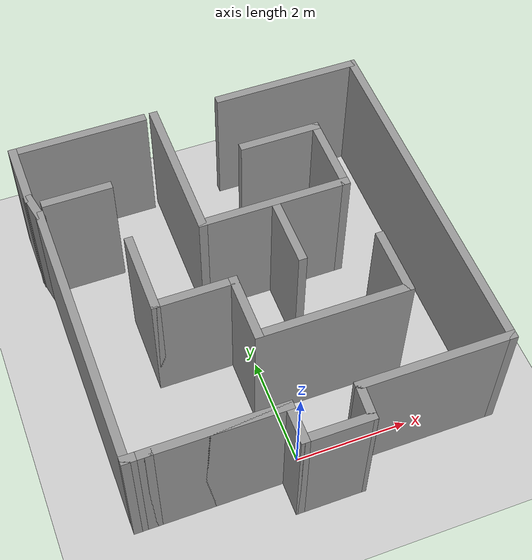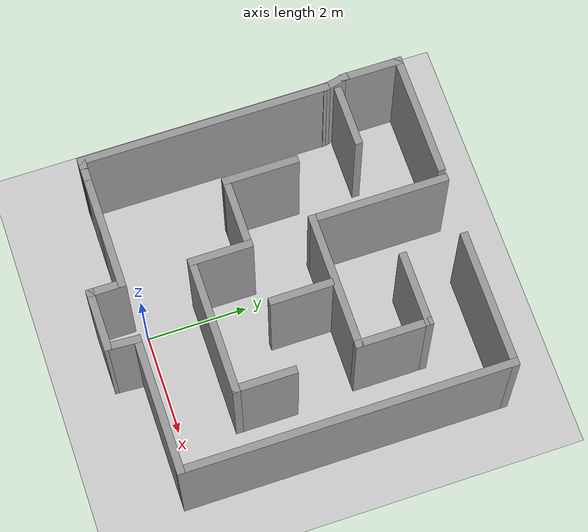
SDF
<sdf version="1.7">
 <world name="default">
  <light name="sun" type="directional">
   <diffuse>0.8 0.8 0.8 1</diffuse>
   <specular>0.2 0.2 0.2 1</specular>
   <attenuation>
    <range>1000</range>
    <constant>0.9</constant>
    <linear>0.01</linear>
    <quadratic>0.001</quadratic>
   </attenuation>
   <direction>-0.5 0.1 -0.9</direction>
   <spot><inner_angle>0</inner_angle><outer_angle>0</outer_angle><falloff>0</falloff></spot>
  </light>
  <model name="ground_plane">
   <static>1</static>
   <link name="link">
    <collision name="collision">
     <geometry><plane><normal>0 0 1</normal><size>100 100</size></plane></geometry>
     <surface><friction><ode><mu>100</mu><mu2>50</mu2></ode></friction></surface>
    </collision>
    <visual name="visual">
     <cast_shadows>0</cast_shadows>
     <geometry><plane><normal>0 0 1</normal><size>100 100</size></plane></geometry>
     <material>
      <script><uri>file://media/materials/scripts/gazebo.material</uri><name>Gazebo/Grey</name></script>
     </material>
    </visual>
   </link>
  </model>
  <gravity>0 0 -9.8</gravity>
  <magnetic_field>6e-06 2.3e-05 -4.2e-05</magnetic_field>
  <atmosphere type="adiabatic"/>
  <physics type="ode">
   <max_step_size>0.001</max_step_size>
   <real_time_factor>1</real_time_factor>
   <real_time_update_rate>1000</real_time_update_rate>
  </physics>
  <scene><ambient>0.4 0.4 0.4 1</ambient><background>0.7 0.7 0.7 1</background><shadows>1</shadows></scene>
  <audio><device>default</device></audio>
  <spherical_coordinates>
   <surface_model>EARTH_WGS84</surface_model>
   <latitude_deg>0</latitude_deg>
   <longitude_deg>0</longitude_deg>
   <elevation>0</elevation>
   <heading_deg>0</heading_deg>
  </spherical_coordinates>
  <model name="my_world">
   <pose>0.211546 2.62958 0 0 -0 0</pose>
   <link name="Wall_0">
    <collision name="Wall_0_Collision">
     <geometry><box><size>0.25 0.15 2.5</size></box></geometry>
     <pose>0 0 1.25 0 -0 0</pose>
    </collision>
    <visual name="Wall_0_Visual">
     <pose>0 0 1.25 0 -0 0</pose>
     <geometry><box><size>0.25 0.15 2.5</size></box></geometry>
     <material>
      <script><uri>file://media/materials/scripts/gazebo.material</uri><name>Gazebo/Grey</name></script>
      <ambient>1 1 1 1</ambient>
     </material>
     <meta><layer>0</layer></meta>
    </visual>
    <pose>-2.81812 -2.87818 0 0 -0 3.14159</pose>
   </link>
   <link name="Wall_1">
    <collision name="Wall_1_Collision">
     <geometry><box><size>2.5 0.15 2.5</size></box></geometry>
     <pose>0 0 1.25 0 -0 0</pose>
    </collision>
    <visual name="Wall_1_Visual">
     <pose>0 0 1.25 0 -0 0</pose>
     <geometry><box><size>2.5 0.15 2.5</size></box></geometry>
     <material>
      <script><uri>file://media/materials/scripts/gazebo.material</uri><name>Gazebo/Grey</name></script>
      <ambient>1 1 1 1</ambient>
     </material>
     <meta><layer>0</layer></meta>
    </visual>
    <pose>-1.69312 -2.87818 0 0 -0 0</pose>
   </link>
   <link name="Wall_10">
    <collision name="Wall_10_Collision">
     <geometry><box><size>2.75 0.15 2.5</size></box></geometry>
     <pose>0 0 1.25 0 -0 0</pose>
    </collision>
    <visual name="Wall_10_Visual">
     <pose>0 0 1.25 0 -0 0</pose>
     <geometry><box><size>2.75 0.15 2.5</size></box></geometry>
     <material>
      <script><uri>file://media/materials/scripts/gazebo.material</uri><name>Gazebo/Grey</name></script>
      <ambient>1 1 1 1</ambient>
     </material>
     <meta><layer>0</layer></meta>
    </visual>
    <pose>0.683531 0.867343 0 0 -0 0</pose>
   </link>
   <link name="Wall_11">
    <collision name="Wall_11_Collision">
     <geometry><box><size>1.5 0.15 2.5</size></box></geometry>
     <pose>0 0 1.25 0 -0 0</pose>
    </collision>
    <visual name="Wall_11_Visual">
     <pose>0 0 1.25 0 -0 0</pose>
     <geometry><box><size>1.5 0.15 2.5</size></box></geometry>
     <material>
      <script><uri>file://media/materials/scripts/gazebo.material</uri><name>Gazebo/Grey</name></script>
      <ambient>1 1 1 1</ambient>
     </material>
     <meta><layer>0</layer></meta>
    </visual>
    <pose>1.98353 1.54234 0 0 -0 1.5708</pose>
   </link>
   <link name="Wall_12">
    <collision name="Wall_12_Collision">
     <geometry><box><size>1.5 0.15 2.5</size></box></geometry>
     <pose>0 0 1.25 0 -0 0</pose>
    </collision>
    <visual name="Wall_12_Visual">
     <pose>0 0 1.25 0 -0 0</pose>
     <geometry><box><size>1.5 0.15 2.5</size></box></geometry>
     <material>
      <script><uri>file://media/materials/scripts/gazebo.material</uri><name>Gazebo/Grey</name></script>
      <ambient>1 1 1 1</ambient>
     </material>
     <meta><layer>0</layer></meta>
    </visual>
    <pose>1.30853 2.21734 0 0 -0 3.14159</pose>
   </link>
   <link name="Wall_14">
    <collision name="Wall_14_Collision">
     <geometry><box><size>1.25 0.15 2.5</size></box></geometry>
     <pose>0 0 1.25 0 -0 0</pose>
    </collision>
    <visual name="Wall_14_Visual">
     <pose>0 0 1.25 0 -0 0</pose>
     <geometry><box><size>1.25 0.15 2.5</size></box></geometry>
     <material>
      <script><uri>file://media/materials/scripts/gazebo.material</uri><name>Gazebo/Grey</name></script>
      <ambient>1 1 1 1</ambient>
     </material>
     <meta><layer>0</layer></meta>
    </visual>
    <pose>0.691484 0.199947 0 0 -0 1.5708</pose>
   </link>
   <link name="Wall_16">
    <collision name="Wall_16_Collision">
     <geometry><box><size>2.75 0.15 2.5</size></box></geometry>
     <pose>0 0 1.25 0 -0 0</pose>
    </collision>
    <visual name="Wall_16_Visual">
     <pose>0 0 1.25 0 -0 0</pose>
     <geometry><box><size>2.75 0.15 2.5</size></box></geometry>
     <material>
      <script><uri>file://media/materials/scripts/gazebo.material</uri><name>Gazebo/Grey</name></script>
      <ambient>1 1 1 1</ambient>
     </material>
     <meta><layer>0</layer></meta>
    </visual>
    <pose>1.91544 -2.92033 0 0 -0 0</pose>
   </link>
   <link name="Wall_17">
    <collision name="Wall_17_Collision">
     <geometry><box><size>6.5 0.15 2.5</size></box></geometry>
     <pose>0 0 1.25 0 -0 0</pose>
    </collision>
    <visual name="Wall_17_Visual">
     <pose>0 0 1.25 0 -0 0</pose>
     <geometry><box><size>6.5 0.15 2.5</size></box></geometry>
     <material>
      <script><uri>file://media/materials/scripts/gazebo.material</uri><name>Gazebo/Grey</name></script>
      <ambient>1 1 1 1</ambient>
     </material>
     <meta><layer>0</layer></meta>
    </visual>
    <pose>3.21544 0.254668 0 0 -0 1.5708</pose>
   </link>
   <link name="Wall_18">
    <collision name="Wall_18_Collision">
     <geometry><box><size>2.75 0.15 2.5</size></box></geometry>
     <pose>0 0 1.25 0 -0 0</pose>
    </collision>
    <visual name="Wall_18_Visual">
     <pose>0 0 1.25 0 -0 0</pose>
     <geometry><box><size>2.75 0.15 2.5</size></box></geometry>
     <material>
      <script><uri>file://media/materials/scripts/gazebo.material</uri><name>Gazebo/Grey</name></script>
      <ambient>1 1 1 1</ambient>
     </material>
     <meta><layer>0</layer></meta>
    </visual>
    <pose>1.91544 3.42967 0 0 -0 3.14159</pose>
   </link>
   <link name="Wall_2">
    <collision name="Wall_2_Collision">
     <geometry><box><size>2.75 0.15 2.5</size></box></geometry>
     <pose>0 0 1.25 0 -0 0</pose>
    </collision>
    <visual name="Wall_2_Visual">
     <pose>0 0 1.25 0 -0 0</pose>
     <geometry><box><size>2.75 0.15 2.5</size></box></geometry>
     <material>
      <script><uri>file://media/materials/scripts/gazebo.material</uri><name>Gazebo/Grey</name></script>
      <ambient>1 1 1 1</ambient>
     </material>
     <meta><layer>0</layer></meta>
    </visual>
    <pose>-1.81812 -2.87818 0 0 -0 3.14159</pose>
   </link>
   <link name="Wall_20">
    <collision name="Wall_20_Collision">
     <geometry><box><size>1.5 0.15 2.5</size></box></geometry>
     <pose>0 0 1.25 0 -0 0</pose>
    </collision>
    <visual name="Wall_20_Visual">
     <pose>0 0 1.25 0 -0 0</pose>
     <geometry><box><size>1.5 0.15 2.5</size></box></geometry>
     <material>
      <script><uri>file://media/materials/scripts/gazebo.material</uri><name>Gazebo/Grey</name></script>
      <ambient>1 1 1 1</ambient>
     </material>
     <meta><layer>0</layer></meta>
    </visual>
    <pose>-1.86359 0.252482 0 0 -0 -1.5708</pose>
   </link>
   <link name="Wall_21">
    <collision name="Wall_21_Collision">
     <geometry><box><size>1.5 0.15 2.5</size></box></geometry>
     <pose>0 0 1.25 0 -0 0</pose>
    </collision>
    <visual name="Wall_21_Visual">
     <pose>0 0 1.25 0 -0 0</pose>
     <geometry><box><size>1.5 0.15 2.5</size></box></geometry>
     <material>
      <script><uri>file://media/materials/scripts/gazebo.material</uri><name>Gazebo/Grey</name></script>
      <ambient>1 1 1 1</ambient>
     </material>
     <meta><layer>0</layer></meta>
    </visual>
    <pose>-1.18859 -0.422518 0 0 -0 0</pose>
   </link>
   <link name="Wall_22">
    <collision name="Wall_22_Collision">
     <geometry><box><size>1.25 0.15 2.5</size></box></geometry>
     <pose>0 0 1.25 0 -0 0</pose>
    </collision>
    <visual name="Wall_22_Visual">
     <pose>0 0 1.25 0 -0 0</pose>
     <geometry><box><size>1.25 0.15 2.5</size></box></geometry>
     <material>
      <script><uri>file://media/materials/scripts/gazebo.material</uri><name>Gazebo/Grey</name></script>
      <ambient>1 1 1 1</ambient>
     </material>
     <meta><layer>0</layer></meta>
    </visual>
    <pose>-0.513586 -0.972518 0 0 -0 -1.5708</pose>
   </link>
   <link name="Wall_23">
    <collision name="Wall_23_Collision">
     <geometry><box><size>2.75 0.15 2.5</size></box></geometry>
     <pose>0 0 1.25 0 -0 0</pose>
    </collision>
    <visual name="Wall_23_Visual">
     <pose>0 0 1.25 0 -0 0</pose>
     <geometry><box><size>2.75 0.15 2.5</size></box></geometry>
     <material>
      <script><uri>file://media/materials/scripts/gazebo.material</uri><name>Gazebo/Grey</name></script>
      <ambient>1 1 1 1</ambient>
     </material>
     <meta><layer>0</layer></meta>
    </visual>
    <pose>0.786414 -1.52252 0 0 -0 0</pose>
   </link>
   <link name="Wall_24">
    <collision name="Wall_24_Collision">
     <geometry><box><size>1.25 0.15 2.5</size></box></geometry>
     <pose>0 0 1.25 0 -0 0</pose>
    </collision>
    <visual name="Wall_24_Visual">
     <pose>0 0 1.25 0 -0 0</pose>
     <geometry><box><size>1.25 0.15 2.5</size></box></geometry>
     <material>
      <script><uri>file://media/materials/scripts/gazebo.material</uri><name>Gazebo/Grey</name></script>
      <ambient>1 1 1 1</ambient>
     </material>
     <meta><layer>0</layer></meta>
    </visual>
    <pose>2.08641 -0.972518 0 0 -0 1.5708</pose>
   </link>
   <link name="Wall_26">
    <collision name="Wall_26_Collision">
     <geometry><box><size>1.25 0.15 2.5</size></box></geometry>
     <pose>0 0 1.25 0 -0 0</pose>
    </collision>
    <visual name="Wall_26_Visual">
     <pose>0 0 1.25 0 -0 0</pose>
     <geometry><box><size>1.25 0.15 2.5</size></box></geometry>
     <material>
      <script><uri>file://media/materials/scripts/gazebo.material</uri><name>Gazebo/Grey</name></script>
      <ambient>1 1 1 1</ambient>
     </material>
     <meta><layer>0</layer></meta>
    </visual>
    <pose>-2.41359 2.18981 0 0 -0 3.14159</pose>
   </link>
   <link name="Wall_28">
    <collision name="Wall_28_Collision">
     <geometry><box><size>1.25 0.15 2.5</size></box></geometry>
     <pose>0 0 1.25 0 -0 0</pose>
    </collision>
    <visual name="Wall_28_Visual">
     <pose>0 0 1.25 0 -0 0</pose>
     <geometry><box><size>1.25 0.15 2.5</size></box></geometry>
     <material>
      <script><uri>file://media/materials/scripts/gazebo.material</uri><name>Gazebo/Grey</name></script>
      <ambient>1 1 1 1</ambient>
     </material>
     <meta><layer>0</layer></meta>
    </visual>
    <pose>-3.20196 2.93255 0 0 -0 -1.5708</pose>
   </link>
   <link name="Wall_29">
    <collision name="Wall_29_Collision">
     <geometry><box><size>0.569205 0.15 2.5</size></box></geometry>
     <pose>0 0 1.25 0 -0 0</pose>
    </collision>
    <visual name="Wall_29_Visual">
     <pose>0 0 1.25 0 -0 0</pose>
     <geometry><box><size>0.569205 0.15 2.5</size></box></geometry>
     <material>
      <script><uri>file://media/materials/scripts/gazebo.material</uri><name>Gazebo/Grey</name></script>
      <ambient>1 1 1 1</ambient>
     </material>
     <meta><layer>0</layer></meta>
    </visual>
    <pose>-3.16004 2.17718 0 0 -0 -1.36945</pose>
   </link>
   <link name="Wall_3">
    <collision name="Wall_3_Collision">
     <geometry><box><size>5 0.15 2.5</size></box></geometry>
     <pose>0 0 1.25 0 -0 0</pose>
    </collision>
    <visual name="Wall_3_Visual">
     <pose>0 0 1.25 0 -0 0</pose>
     <geometry><box><size>5 0.15 2.5</size></box></geometry>
     <material>
      <script><uri>file://media/materials/scripts/gazebo.material</uri><name>Gazebo/Grey</name></script>
      <ambient>1 1 1 1</ambient>
     </material>
     <meta><layer>0</layer></meta>
    </visual>
    <pose>-3.11812 -0.453184 0 0 -0 1.5708</pose>
   </link>
   <link name="Wall_31">
    <collision name="Wall_31_Collision">
     <geometry><box><size>0.75 0.15 2.5</size></box></geometry>
     <pose>0 0 1.25 0 -0 0</pose>
    </collision>
    <visual name="Wall_31_Visual">
     <pose>0 0 1.25 0 -0 0</pose>
     <geometry><box><size>0.75 0.15 2.5</size></box></geometry>
     <material>
      <script><uri>file://media/materials/scripts/gazebo.material</uri><name>Gazebo/Grey</name></script>
      <ambient>1 1 1 1</ambient>
     </material>
     <meta><layer>0</layer></meta>
    </visual>
    <pose>-0.518119 -3.17818 0 0 -0 -1.5708</pose>
   </link>
   <link name="Wall_32">
    <collision name="Wall_32_Collision">
     <geometry><box><size>1.25 0.15 2.5</size></box></geometry>
     <pose>0 0 1.25 0 -0 0</pose>
    </collision>
    <visual name="Wall_32_Visual">
     <pose>0 0 1.25 0 -0 0</pose>
     <geometry><box><size>1.25 0.15 2.5</size></box></geometry>
     <material>
      <script><uri>file://media/materials/scripts/gazebo.material</uri><name>Gazebo/Grey</name></script>
      <ambient>1 1 1 1</ambient>
     </material>
     <meta><layer>0</layer></meta>
    </visual>
    <pose>0.031881 -3.47818 0 0 -0 0</pose>
   </link>
   <link name="Wall_33">
    <collision name="Wall_33_Collision">
     <geometry><box><size>0.708861 0.15 2.5</size></box></geometry>
     <pose>0 0 1.25 0 -0 0</pose>
    </collision>
    <visual name="Wall_33_Visual">
     <pose>0 0 1.25 0 -0 0</pose>
     <geometry><box><size>0.708861 0.15 2.5</size></box></geometry>
     <material>
      <script><uri>file://media/materials/scripts/gazebo.material</uri><name>Gazebo/Grey</name></script>
      <ambient>1 1 1 1</ambient>
     </material>
     <meta><layer>0</layer></meta>
    </visual>
    <pose>0.598661 -3.19926 0 0 -0 1.51071</pose>
   </link>
   <link name="Wall_6">
    <collision name="Wall_6_Collision">
     <geometry><box><size>2.5 0.15 2.5</size></box></geometry>
     <pose>0 0 1.25 0 -0 0</pose>
    </collision>
    <visual name="Wall_6_Visual">
     <pose>0 0 1.25 0 -0 0</pose>
     <geometry><box><size>2.5 0.15 2.5</size></box></geometry>
     <material>
      <script><uri>file://media/materials/scripts/gazebo.material</uri><name>Gazebo/Grey</name></script>
      <ambient>1 1 1 1</ambient>
     </material>
     <meta><layer>0</layer></meta>
    </visual>
    <pose>-2.02696 3.48255 0 0 -0 0</pose>
   </link>
   <link name="Wall_9">
    <collision name="Wall_9_Collision">
     <geometry><box><size>2.75 0.15 2.5</size></box></geometry>
     <pose>0 0 1.25 0 -0 0</pose>
    </collision>
    <visual name="Wall_9_Visual">
     <pose>0 0 1.25 0 -0 0</pose>
     <geometry><box><size>2.75 0.15 2.5</size></box></geometry>
     <material>
      <script><uri>file://media/materials/scripts/gazebo.material</uri><name>Gazebo/Grey</name></script>
      <ambient>1 1 1 1</ambient>
     </material>
     <meta><layer>0</layer></meta>
    </visual>
    <pose>-0.616469 2.16734 0 0 -0 -1.5708</pose>
   </link>
   <static>1</static>
  </model>
 </world>
</sdf>
